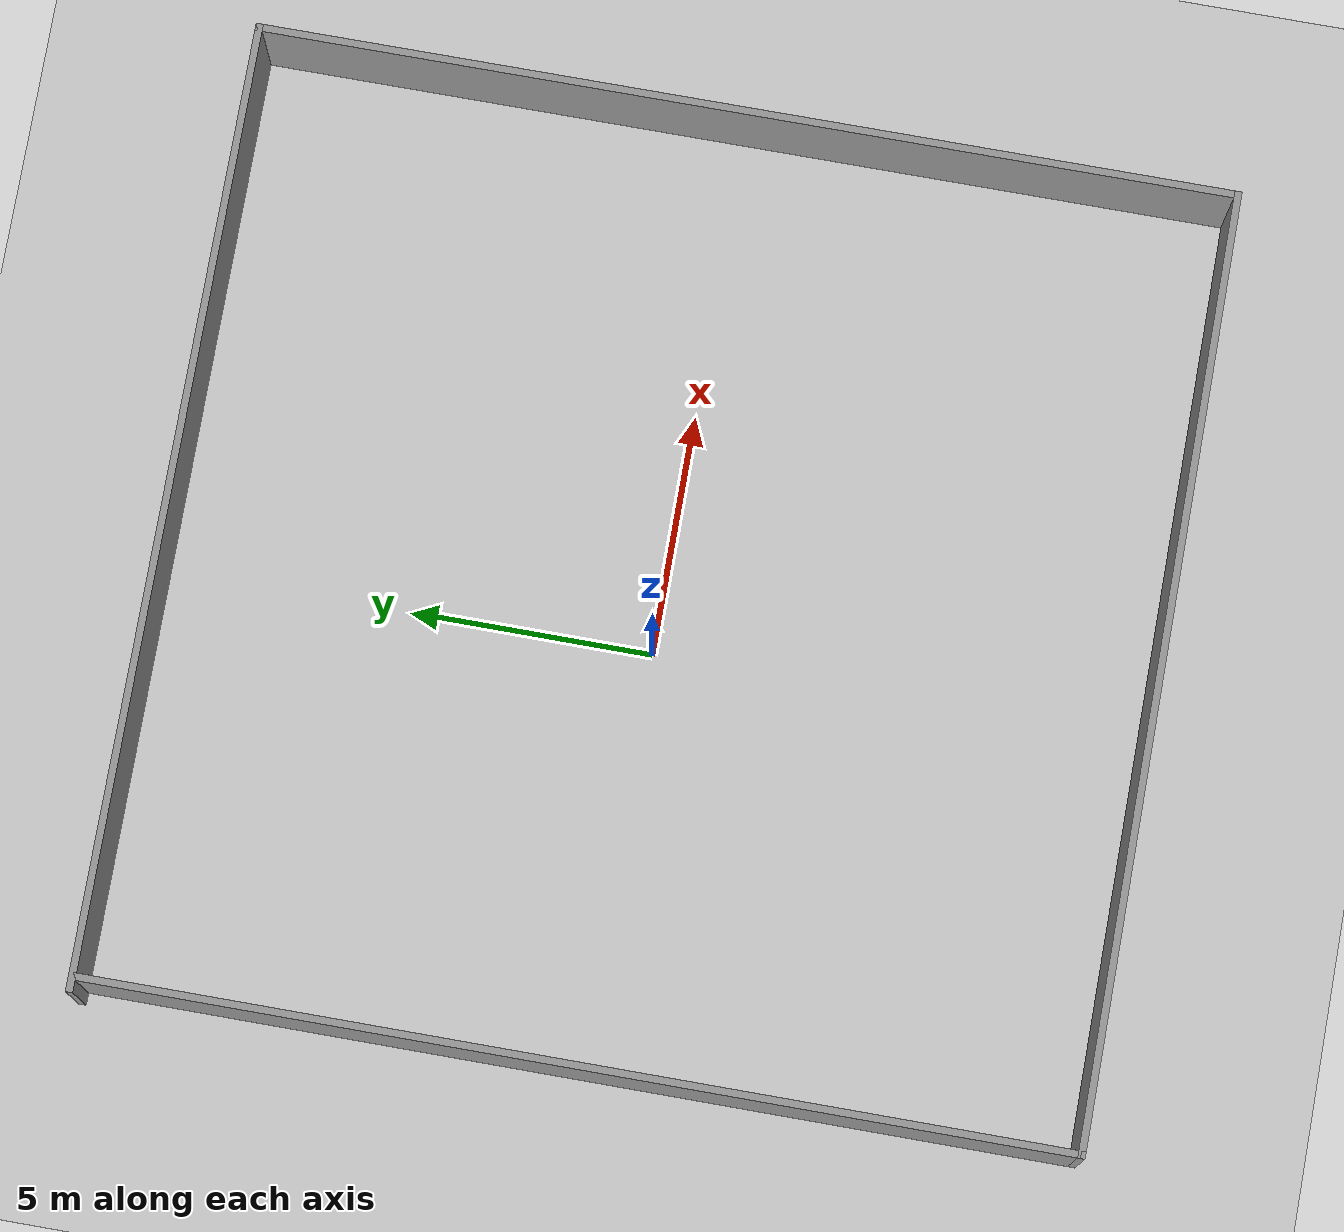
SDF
<?xml version="1.0" ?>
<sdf version="1.4">
  <world name="square_map_20">
    <include>
      <uri>model://ground_plane</uri>
    </include>
    <include>
      <uri>model://sun</uri>
    </include>
    <include>
      <uri>model://square_map_20</uri>
      <name>square_map_20m</name>
      <pose>1.0 0 0 0 0 0</pose>
    </include>
  </world>
</sdf>

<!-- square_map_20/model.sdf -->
<sdf version='1.6'>
  <model name='square_map_20'>
    <pose frame=''>-0.070514 0.007524 0 0 -0 0</pose>
    <link name='Wall_0'>
      <collision name='Wall_0_Collision'>
        <geometry>
          <box>
            <size>20 0.15 2.5</size>
          </box>
        </geometry>
        <pose frame=''>0 0 1.25 0 -0 0</pose>
      </collision>
      <visual name='Wall_0_Visual'>
        <pose frame=''>0 0 1.25 0 -0 0</pose>
        <geometry>
          <box>
            <size>20 0.15 2.5</size>
          </box>
        </geometry>
        <material>
          <script>
            <uri>file://media/materials/scripts/gazebo.material</uri>
            <name>Gazebo/Grey</name>
          </script>
          <ambient>1 1 1 1</ambient>
        </material>
      </visual>
      <pose frame=''>0 10.05 0 0 -0 0</pose>
    </link>
    <link name='Wall_1'>
      <collision name='Wall_1_Collision'>
        <geometry>
          <box>
            <size>20.25 0.15 2.5</size>
          </box>
        </geometry>
        <pose frame=''>0 0 1.25 0 -0 0</pose>
      </collision>
      <visual name='Wall_1_Visual'>
        <pose frame=''>0 0 1.25 0 -0 0</pose>
        <geometry>
          <box>
            <size>20.25 0.15 2.5</size>
          </box>
        </geometry>
        <material>
          <script>
            <uri>file://media/materials/scripts/gazebo.material</uri>
            <name>Gazebo/Grey</name>
          </script>
          <ambient>1 1 1 1</ambient>
        </material>
      </visual>
      <pose frame=''>9.925 0 0 0 0 -1.5708</pose>
    </link>
    <link name='Wall_2'>
      <collision name='Wall_2_Collision'>
        <geometry>
          <box>
            <size>19.75 0.15 2.5</size>
          </box>
        </geometry>
        <pose frame=''>0 0 1.25 0 -0 0</pose>
      </collision>
      <visual name='Wall_2_Visual'>
        <pose frame=''>0 0 1.25 0 -0 0</pose>
        <geometry>
          <box>
            <size>19.75 0.15 2.5</size>
          </box>
        </geometry>
        <material>
          <script>
            <uri>file://media/materials/scripts/gazebo.material</uri>
            <name>Gazebo/Grey</name>
          </script>
          <ambient>1 1 1 1</ambient>
        </material>
      </visual>
      <pose frame=''>0.125 -10.05 0 0 -0 3.14159</pose>
    </link>
    <link name='Wall_3'>
      <collision name='Wall_3_Collision'>
        <geometry>
          <box>
            <size>20.25 0.15 2.5</size>
          </box>
        </geometry>
        <pose frame=''>0 0 1.25 0 -0 0</pose>
      </collision>
      <visual name='Wall_3_Visual'>
        <pose frame=''>0 0 1.25 0 -0 0</pose>
        <geometry>
          <box>
            <size>20.25 0.15 2.5</size>
          </box>
        </geometry>
        <material>
          <script>
            <uri>file://media/materials/scripts/gazebo.material</uri>
            <name>Gazebo/Grey</name>
          </script>
          <ambient>1 1 1 1</ambient>
        </material>
      </visual>
      <pose frame=''>-9.675 0 0 0 -0 1.5708</pose>
    </link>
    <static>1</static>
  </model>
</sdf>
